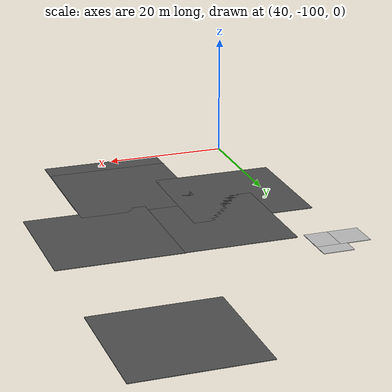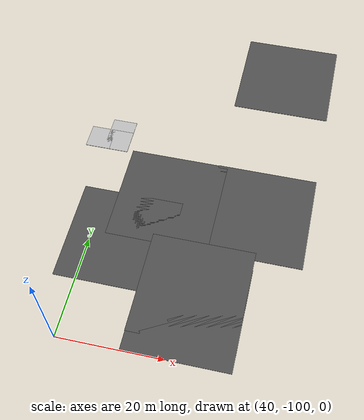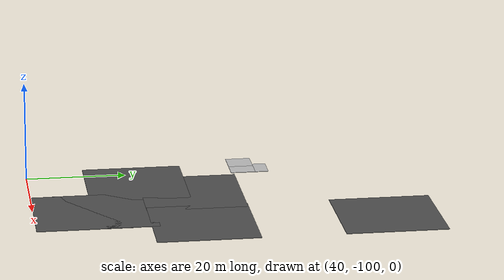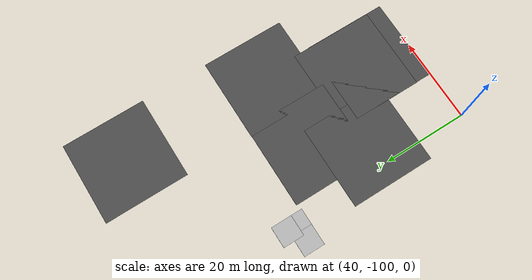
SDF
<sdf version="1.6">
 <world name="default">
  <model name="asphalt_plane">
   <static>1</static>
   <link name="link">
    <collision name="collision"><geometry><box><size>20 20 0.1</size></box></geometry></collision>
    <visual name="visual">
     <cast_shadows>0</cast_shadows>
     <geometry><box><size>20 20 0.1</size></box></geometry>
     <material>
      <script>
       <uri>model://asphalt_plane/materials/scripts</uri>
       <uri>model://asphalt_plane/materials/textures</uri>
       <name>vrc/asphalt</name>
      </script>
     </material>
    </visual>
   </link>
   <pose>70.7475 -31.5972 0 0 -0 0</pose>
  </model>
  <model name="asphalt_plane_17">
   <static>1</static>
   <link name="link">
    <collision name="collision"><geometry><box><size>20 20 0.1</size></box></geometry></collision>
    <visual name="visual">
     <cast_shadows>0</cast_shadows>
     <geometry><box><size>20 20 0.1</size></box></geometry>
     <material>
      <script>
       <uri>model://asphalt_plane/materials/scripts</uri>
       <uri>model://asphalt_plane/materials/textures</uri>
       <name>vrc/asphalt</name>
      </script>
     </material>
    </visual>
   </link>
   <pose>52.5696 -67.9238 0 0 -0 0</pose>
  </model>
  <model name="asphalt_plane_18">
   <static>1</static>
   <link name="link">
    <collision name="collision"><geometry><box><size>20 20 0.1</size></box></geometry></collision>
    <visual name="visual">
     <cast_shadows>0</cast_shadows>
     <geometry><box><size>20 20 0.1</size></box></geometry>
     <material>
      <script>
       <uri>model://asphalt_plane/materials/scripts</uri>
       <uri>model://asphalt_plane/materials/textures</uri>
       <name>vrc/asphalt</name>
      </script>
     </material>
    </visual>
   </link>
   <pose>70.6965 -67.8375 0 0 -0 0</pose>
  </model>
  <model name="asphalt_plane_19">
   <static>1</static>
   <link name="link">
    <collision name="collision"><geometry><box><size>20 20 0.1</size></box></geometry></collision>
    <visual name="visual">
     <cast_shadows>0</cast_shadows>
     <geometry><box><size>20 20 0.1</size></box></geometry>
     <material>
      <script>
       <uri>model://asphalt_plane/materials/scripts</uri>
       <uri>model://asphalt_plane/materials/textures</uri>
       <name>vrc/asphalt</name>
      </script>
     </material>
    </visual>
   </link>
   <pose>61.6742 -86.2327 0 0 -0 0</pose>
  </model>
  <model name="asphalt_plane_20">
   <static>1</static>
   <link name="link">
    <collision name="collision"><geometry><box><size>20 20 0.1</size></box></geometry></collision>
    <visual name="visual">
     <cast_shadows>0</cast_shadows>
     <geometry><box><size>20 20 0.1</size></box></geometry>
     <material>
      <script>
       <uri>model://asphalt_plane/materials/scripts</uri>
       <uri>model://asphalt_plane/materials/textures</uri>
       <name>vrc/asphalt</name>
      </script>
     </material>
    </visual>
   </link>
   <pose>61.7481 -89.9696 0 0 -0 0</pose>
  </model>
  <model name="asphalt_plane_25">
   <static>1</static>
   <link name="link">
    <collision name="collision"><geometry><box><size>20 20 0.1</size></box></geometry></collision>
    <visual name="visual">
     <cast_shadows>0</cast_shadows>
     <geometry><box><size>20 20 0.1</size></box></geometry>
     <material>
      <script>
       <uri>model://asphalt_plane/materials/scripts</uri>
       <uri>model://asphalt_plane/materials/textures</uri>
       <name>vrc/asphalt</name>
      </script>
     </material>
    </visual>
   </link>
   <pose>45.6367 -78.4315 0 0 -0 0</pose>
  </model>
  <model name="outdoor_plane_11">
   <static>1</static>
   <link name="link">
    <collision name="collision"><geometry><box><size>5 5 0.1</size></box></geometry></collision>
    <visual name="visual">
     <cast_shadows>0</cast_shadows>
     <geometry><box><size>5 5 0.1</size></box></geometry>
     <material>
      <script>
       <uri>model://outdoor_planesmall/materials/scripts</uri>
       <uri>model://outdoor_planesmall/materials/textures</uri>
       <name>outdss/Image</name>
      </script>
     </material>
    </visual>
   </link>
   <pose>38.8857 -53.2696 0 0 -0 0</pose>
  </model>
  <model name="outdoor_plane_12">
   <static>1</static>
   <link name="link">
    <collision name="collision"><geometry><box><size>5 5 0.1</size></box></geometry></collision>
    <visual name="visual">
     <cast_shadows>0</cast_shadows>
     <geometry><box><size>5 5 0.1</size></box></geometry>
     <material>
      <script>
       <uri>model://outdoor_planesmall/materials/scripts</uri>
       <uri>model://outdoor_planesmall/materials/textures</uri>
       <name>outdss/Image</name>
      </script>
     </material>
    </visual>
   </link>
   <pose>34.9956 -55.9437 0 0 -0 0</pose>
  </model>
  <model name="outdoor_plane_13">
   <static>1</static>
   <link name="link">
    <collision name="collision"><geometry><box><size>5 5 0.1</size></box></geometry></collision>
    <visual name="visual">
     <cast_shadows>0</cast_shadows>
     <geometry><box><size>5 5 0.1</size></box></geometry>
     <material>
      <script>
       <uri>model://outdoor_planesmall/materials/scripts</uri>
       <uri>model://outdoor_planesmall/materials/textures</uri>
       <name>outdss/Image</name>
      </script>
     </material>
    </visual>
   </link>
   <pose>38.8783 -55.9475 0 0 -0 0</pose>
  </model>
 </world>
</sdf>
